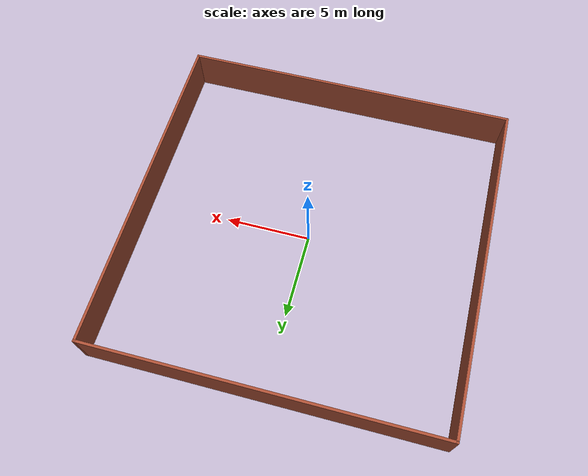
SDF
<?xml version='1.0'?>
<sdf version='1.7'>
  <model name='walls'>
    <pose>-0.075 0.06 0 0 -0 0</pose>
    <link name='Wall_1'>
      <collision name='Wall_1_Collision'>
        <geometry>
          <box>
            <size>19.75 0.15 2.5</size>
          </box>
        </geometry>
        <pose>0 0 1.25 0 -0 0</pose>
      </collision>
      <visual name='Wall_1_Visual'>
        <pose>0 0 1.25 0 -0 0</pose>
        <geometry>
          <box>
            <size>19.75 0.15 2.5</size>
          </box>
        </geometry>
        <material>
          <script>
            <uri>file://media/materials/scripts/gazebo.material</uri>
            <name>Gazebo/Bricks</name>
          </script>
          <ambient>1 1 1 1</ambient>
        </material>
        <meta>
          <layer>0</layer>
        </meta>
      </visual>
      <pose>-9.925 -0 0 0 -0 1.5708</pose>
    </link>
    <link name='Wall_3'>
      <collision name='Wall_3_Collision'>
        <geometry>
          <box>
            <size>20 0.15 2.5</size>
          </box>
        </geometry>
        <pose>0 0 1.25 0 -0 0</pose>
      </collision>
      <visual name='Wall_3_Visual'>
        <pose>0 0 1.25 0 -0 0</pose>
        <geometry>
          <box>
            <size>20 0.15 2.5</size>
          </box>
        </geometry>
        <material>
          <script>
            <uri>file://media/materials/scripts/gazebo.material</uri>
            <name>Gazebo/Bricks</name>
          </script>
          <ambient>1 1 1 1</ambient>
        </material>
        <meta>
          <layer>0</layer>
        </meta>
      </visual>
      <pose>-0 -9.8 0 0 -0 0</pose>
    </link>
    <link name='Wall_4'>
      <collision name='Wall_4_Collision'>
        <geometry>
          <box>
            <size>19.75 0.15 2.5</size>
          </box>
        </geometry>
        <pose>0 0 1.25 0 -0 0</pose>
      </collision>
      <visual name='Wall_4_Visual'>
        <pose>0 0 1.25 0 -0 0</pose>
        <geometry>
          <box>
            <size>19.75 0.15 2.5</size>
          </box>
        </geometry>
        <material>
          <script>
            <uri>file://media/materials/scripts/gazebo.material</uri>
            <name>Gazebo/Bricks</name>
          </script>
          <ambient>1 1 1 1</ambient>
        </material>
        <meta>
          <layer>0</layer>
        </meta>
      </visual>
      <pose>9.925 -0 0 0 -0 1.5708</pose>
    </link>
    <link name='Wall_5'>
      <collision name='Wall_5_Collision'>
        <geometry>
          <box>
            <size>20 0.15 2.5</size>
          </box>
        </geometry>
        <pose>0 0 1.25 0 -0 0</pose>
      </collision>
      <visual name='Wall_5_Visual'>
        <pose>0 0 1.25 0 -0 0</pose>
        <geometry>
          <box>
            <size>20 0.15 2.5</size>
          </box>
        </geometry>
        <material>
          <script>
            <uri>file://media/materials/scripts/gazebo.material</uri>
            <name>Gazebo/Bricks</name>
          </script>
          <ambient>1 1 1 1</ambient>
        </material>
        <meta>
          <layer>0</layer>
        </meta>
      </visual>
      <pose>-0 9.8 0 0 -0 3.14159</pose>
    </link>
    <static>1</static>
  </model>
</sdf>
